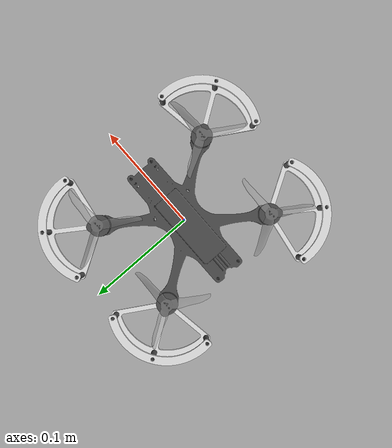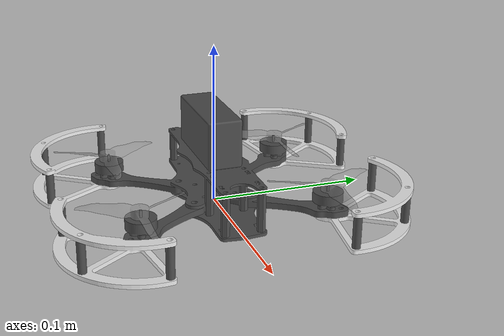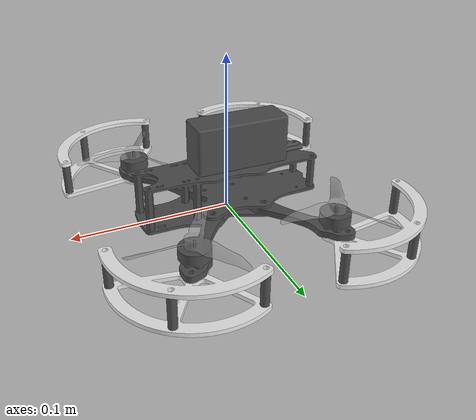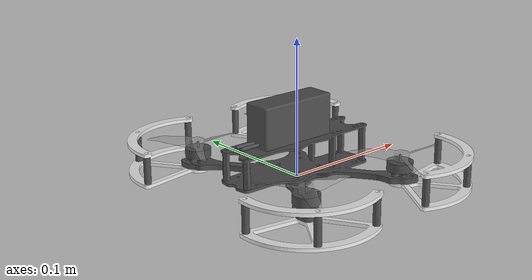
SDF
<?xml version='1.0'?>
<sdf version='1.7'>
  <model name='Base_Model'>

    <include>
      <uri>model://SAR_Base</uri>
    </include>

    <static>0</static>
    <allow_auto_disable>1</allow_auto_disable>
  </model>
</sdf>

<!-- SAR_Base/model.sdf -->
<sdf version='1.7'>
  <model name='SAR_Base'>
    <link name='SAR_Body'>
      <pose>0 0 0 0 0 0</pose>
      <inertial>
        <mass>275.0e-3</mass>
        <inertia>
          <ixx>6.17e-4</ixx>
          <ixy>0</ixy>
          <ixz>0</ixz>
          <iyy>4.64e-4</iyy>
          <iyz>0</iyz>
          <izz>1.02e-3</izz>
        </inertia>
        <pose>0 0 18.0e-3 0 0 0</pose>
      </inertial>
      <gravity>1</gravity>
      <self_collide>0</self_collide>
      <kinematic>0</kinematic>
      <enable_wind>0</enable_wind>

      <visual name='Impulse_Micro_Base_Assembly'>
        <pose>0 0 0 0 0 0</pose>
        <geometry>
          <mesh>
            <uri>model://SAR_Base/meshes/Impulse_Micro_Base_Assembly.STL</uri>
            <scale>1 1 1</scale>
          </mesh>
        </geometry>
        <material>
          <script>
            <name>Gazebo/DarkGrey</name>
            <uri>file://media/materials/scripts/gazebo.material</uri>
          </script>
          <lighting>1</lighting>
        </material>
      </visual>

      <visual name='Impulse_Micro_Prop_Guards'>
        <pose>0 0 0 0 0 0</pose>
        <geometry>
          <mesh>
            <uri>model://SAR_Base/meshes/Impulse_Micro_Prop_Guards.STL</uri>
            <scale>1 1 1</scale>
          </mesh>
        </geometry>
        <material>
          <script>
            <name>Gazebo/White</name>
            <uri>file://media/materials/scripts/gazebo.material</uri>
          </script>
          <lighting>1</lighting>
        </material>
      </visual>

      <visual name='Impulse_Micro_Prop_Guard_Standoffs'>
        <pose>0 0 0 0 0 0</pose>
        <geometry>
          <mesh>
            <uri>model://SAR_Base/meshes/Impulse_Micro_Prop_Guard_Standoffs.STL</uri>
            <scale>1 1 1</scale>
          </mesh>
        </geometry>
        <material>
          <script>
            <name>Gazebo/DarkGrey</name>
            <uri>file://media/materials/scripts/gazebo.material</uri>
          </script>
          <lighting>1</lighting>
        </material>
      </visual>

      <collision name='Body_Collision_Prop_1'>
        <pose>44.5e-3 -58.6e-3 14.75e-3 0 0 0</pose>
        <geometry>
          <cylinder>
            <length>29.5e-3</length>
            <radius>50.0e-3</radius>
          </cylinder>
        </geometry>
      </collision>

      <collision name='Body_Collision_Prop_2'>
        <pose>-44.5e-3 -58.6e-3 14.75e-3 0 0 0</pose>
        <geometry>
          <cylinder>
            <length>29.5e-3</length>
            <radius>50.0e-3</radius>
          </cylinder>
        </geometry>
      </collision>

      <collision name='Body_Collision_Prop_3'>
        <pose>-44.5e-3 58.6e-3 14.75e-3 0 0 0</pose>
        <geometry>
          <cylinder>
            <length>29.5e-3</length>
            <radius>50.0e-3</radius>
          </cylinder>
        </geometry>
      </collision>

      <collision name='Body_Collision_Prop_4'>
        <pose>44.5e-3 58.6e-3 14.75e-3 0 0 0</pose>
        <geometry>
          <cylinder>
            <length>29.5e-3</length>
            <radius>50.0e-3</radius>
          </cylinder>
        </geometry>
      </collision>

      <collision name='Body_Collision_Battery'>
        <pose>-7.0e-3 0 44.5e-3 0 0 0</pose>
        <geometry>
          <box>
            <size>60.0e-3 22.0e-3 30.0e-3 </size>
          </box>
        </geometry>
      </collision>
    </link>

    <link name='Prop_1'>
      <inertial>
        <mass>1e-6</mass>
        <inertia>
          <ixx>1e-6</ixx>
          <ixy>0</ixy>
          <ixz>0</ixz>
          <iyy>1e-6</iyy>
          <iyz>0</iyz>
          <izz>1e-6</izz>
        </inertia>
        <pose>0 0 0 0 0 0</pose>
      </inertial>
      <pose>44.5e-3 -58.6e-3 17.2e-3 0 0 0</pose>
      <gravity>1</gravity>
      <self_collide>0</self_collide>
      <visual name='Impulse_Micro_Prop_1'>
        <pose>0 0 0 0 0 0</pose>
        <geometry>
          <mesh>
            <uri>model://SAR_Base/meshes/Impulse_Micro_3-inch_Prop_CCW.STL</uri>
            <scale>1 1 1</scale>
          </mesh>
        </geometry>
        <material>
          <script>
            <uri>file://media/materials/scripts/gazebo.material</uri>
            <name>Gazebo/GreyTransparent  </name>
          </script>
        </material>
      </visual>
    </link>

    <link name='Prop_2'>
      <inertial>
        <mass>1e-6</mass>
        <inertia>
          <ixx>1e-6</ixx>
          <ixy>0</ixy>
          <ixz>0</ixz>
          <iyy>1e-6</iyy>
          <iyz>0</iyz>
          <izz>1e-6</izz>
        </inertia>
        <pose>0 0 0 0 0 0</pose>
      </inertial>
      <pose>-44.5e-3 -58.6e-3 17.2e-3 0 0 0</pose>
      <gravity>1</gravity>
      <self_collide>0</self_collide>
      <visual name='Impulse_Micro_Prop_2'>
        <pose>0 0 0 0 0 0</pose>
        <geometry>
          <mesh>
            <uri>model://SAR_Base/meshes/Impulse_Micro_3-inch_Prop_CW.STL</uri>
            <scale>1 1 1</scale>
          </mesh>
        </geometry>
        <material>
          <script>
            <uri>file://media/materials/scripts/gazebo.material</uri>
            <name>Gazebo/GreyTransparent  </name>
          </script>
        </material>
      </visual>
    </link>

    <link name='Prop_3'>
      <inertial>
        <mass>1e-6</mass>
        <inertia>
          <ixx>1e-6</ixx>
          <ixy>0</ixy>
          <ixz>0</ixz>
          <iyy>1e-6</iyy>
          <iyz>0</iyz>
          <izz>1e-6</izz>
        </inertia>
        <pose>0 0 0 0 0 0</pose>
      </inertial>
      <pose>-44.5e-3 58.6e-3 17.2e-3 0 0 0</pose>
      <gravity>1</gravity>
      <self_collide>0</self_collide>
      <visual name='Impulse_Micro_Prop_3'>
        <pose>0 0 0 0 0 0</pose>
        <geometry>
          <mesh>
            <uri>model://SAR_Base/meshes/Impulse_Micro_3-inch_Prop_CCW.STL</uri>
            <scale>1 1 1</scale>
          </mesh>
        </geometry>
        <material>
          <script>
            <uri>file://media/materials/scripts/gazebo.material</uri>
            <name>Gazebo/GreyTransparent  </name>
          </script>
        </material>
      </visual>
    </link>

    <link name='Prop_4'>
      <inertial>
        <mass>1e-6</mass>
        <inertia>
          <ixx>1e-6</ixx>
          <ixy>0</ixy>
          <ixz>0</ixz>
          <iyy>1e-6</iyy>
          <iyz>0</iyz>
          <izz>1e-6</izz>
        </inertia>
        <pose>0 0 0 0 0 0</pose>
      </inertial>
      <pose>44.5e-3 58.6e-3 17.2e-3 0 0 0</pose>
      <gravity>1</gravity>
      <self_collide>0</self_collide>
      <visual name='Impulse_Micro_Prop_4'>
        <pose>0 0 0 0 0 0</pose>
        <geometry>
          <mesh>
            <uri>model://SAR_Base/meshes/Impulse_Micro_3-inch_Prop_CW.STL</uri>
            <scale>1 1 1</scale>
          </mesh>
        </geometry>
        <material>
          <script>
            <uri>file://media/materials/scripts/gazebo.material</uri>
            <name>Gazebo/GreyTransparent  </name>
          </script>
        </material>
      </visual>
    </link>

    <link name='Camera'>
      <inertial>
        <mass>1e-6</mass>
        <inertia>
          <ixx>1e-6</ixx>
          <ixy>0</ixy>
          <ixz>0</ixz>
          <iyy>1e-6</iyy>
          <iyz>0</iyz>
          <izz>1e-6</izz>
        </inertia>
        <pose>0 0 0 0 0 0</pose>
      </inertial>

      <sensor type="camera" name="Camera">
        <pose>0 0 0 0 0 0</pose>
        <update_rate>100</update_rate>        <!--Changed to a nice number for FPS because message didn't contain enough precision -->
        <visualize>false</visualize>
        <camera name="head">
          <save enabled="false">
            <path>/home/bhabas/Downloads/Video_images</path>
            <!--Convert Command: ffmpeg -framerate 60 -pattern_type glob -i '*.jpg' -c:v libx264 -pix_fmt yuv420p out.mp4 -->
          </save>
          <horizontal_fov>1.435</horizontal_fov>          <!-- 82.22 deg FoV to match AI Deck -->
          <image>
            <width>64</width>
            <height>64</height>
            <format>L8</format>
          </image>
          <clip>
            <near>0.02</near>
            <far>300</far>
          </clip>
          <noise>
            <type>gaussian</type>
            <!-- Noise is sampled independently per pixel on each frame.
                 That pixel's noise value is added to each of its color
                 channels, which at that point lie in the range [0,1]. -->
            <mean>0.0</mean>
            <stddev>0.000</stddev>
          </noise>
          <lens>
            <type>sterographic</type>
          </lens>
        </camera>
        <plugin name="camera_controller" filename="libgazebo_ros_camera.so">
          <alwaysOn>true</alwaysOn>
          <updateRate>0.0</updateRate>
          <cameraName>SAR_Internal/camera</cameraName>
          <imageTopicName>image_raw</imageTopicName>
          <cameraInfoTopicName>camera_info</cameraInfoTopicName>
          <frameName>camera_sensor</frameName>
          <hackBaseline>0.0</hackBaseline>
          <distortionK1>0.0</distortionK1>
          <distortionK2>0.0</distortionK2>
          <distortionK3>0.0</distortionK3>
          <distortionT1>0.0</distortionT1>
          <distortionT2>0.0</distortionT2>
        </plugin>
      </sensor>

      <visual name='camera_center'>
        <cast_shadows>0</cast_shadows>
        <pose>0 0 0 0 0 0</pose>
        <geometry>
          <sphere>
            <radius>0.002</radius>
          </sphere>
        </geometry>
        <material>
          <script>
            <name>Gazebo/Blue</name>
            <uri>file://media/materials/scripts/gazebo.material</uri>
          </script>
          <shader type='pixel'>
            <normal_map>__default__</normal_map>
          </shader>
        </material>
      </visual>
    </link>

    <joint name='Prop_1_Joint' type='revolute'>
      <parent>SAR_Body</parent>
      <child>Prop_1</child>
      <pose>0 0 0 0 0 0</pose>
      <axis>
        <xyz>0 0 1</xyz>
        <limit>
          <lower>-1.79769e+308</lower>
          <upper>1.79769e+308</upper>
          <effort>-1</effort>
          <velocity>-1</velocity>
        </limit>
        <dynamics>
          <spring_reference>0</spring_reference>
          <spring_stiffness>0</spring_stiffness>
        </dynamics>
      </axis>
    </joint>

    <joint name='Prop_2_Joint' type='revolute'>
      <parent>SAR_Body</parent>
      <child>Prop_2</child>
      <pose>0 0 0 0 0 0</pose>
      <axis>
        <xyz>0 0 1</xyz>
        <limit>
          <lower>-1.79769e+308</lower>
          <upper>1.79769e+308</upper>
          <effort>-1</effort>
          <velocity>-1</velocity>
        </limit>
        <dynamics>
          <spring_reference>0</spring_reference>
          <spring_stiffness>0</spring_stiffness>
        </dynamics>
      </axis>
    </joint>

    <joint name='Prop_3_Joint' type='revolute'>
      <parent>SAR_Body</parent>
      <child>Prop_3</child>
      <pose>0 0 0 0 0 0</pose>
      <axis>
        <xyz>0 0 1</xyz>
        <limit>
          <lower>-1.79769e+308</lower>
          <upper>1.79769e+308</upper>
          <effort>-1</effort>
          <velocity>-1</velocity>
        </limit>
        <dynamics>
          <spring_reference>0</spring_reference>
          <spring_stiffness>0</spring_stiffness>
        </dynamics>
      </axis>
    </joint>

    <joint name='Prop_4_Joint' type='revolute'>
      <parent>SAR_Body</parent>
      <child>Prop_4</child>
      <pose>0 0 0 0 0 0</pose>
      <axis>
        <xyz>0 0 1</xyz>
        <limit>
          <lower>-1.79769e+308</lower>
          <upper>1.79769e+308</upper>
          <effort>-1</effort>
          <velocity>-1</velocity>
        </limit>
        <dynamics>
          <spring_reference>0</spring_reference>
          <spring_stiffness>0</spring_stiffness>
        </dynamics>
      </axis>
    </joint>

    <joint name='Camera_Joint' type='fixed'>
      <parent>SAR_Body</parent>
      <child>Camera</child>
    </joint>

    <plugin name='Motor_1_Plugin' filename='libMotor_Plugin.so'>
      <Motor_Number>1</Motor_Number>
      <Joint_Name>Prop_1_Joint</Joint_Name>
      <Link_Name>Prop_1</Link_Name>
      <Turning_Direction>ccw</Turning_Direction>
      <Visual_Slowdown>200</Visual_Slowdown>
    </plugin>

    <plugin name='Motor_2_Plugin' filename='libMotor_Plugin.so'>
      <Motor_Number>2</Motor_Number>
      <Joint_Name>Prop_2_Joint</Joint_Name>
      <Link_Name>Prop_2</Link_Name>
      <Turning_Direction>cw</Turning_Direction>
      <Visual_Slowdown>200</Visual_Slowdown>
    </plugin>

    <plugin name='Motor_3_Plugin' filename='libMotor_Plugin.so'>
      <Motor_Number>3</Motor_Number>
      <Joint_Name>Prop_3_Joint</Joint_Name>
      <Link_Name>Prop_3</Link_Name>
      <Turning_Direction>ccw</Turning_Direction>
      <Visual_Slowdown>200</Visual_Slowdown>
    </plugin>

    <plugin name='Motor_4_Plugin' filename='libMotor_Plugin.so'>
      <Motor_Number>4</Motor_Number>
      <Joint_Name>Prop_4_Joint</Joint_Name>
      <Link_Name>Prop_4</Link_Name>
      <Turning_Direction>cw</Turning_Direction>
      <Visual_Slowdown>200</Visual_Slowdown>
    </plugin>

    <plugin name='SAR_Update_Plugin' filename='libSAR_Update_Plugin.so'>
      <CameraJointName>Camera_Joint</CameraJointName>
    </plugin>

    <plugin name='Vicon_plugin' filename='libgazebo_ros_p3d.so'>
      <alwaysOn>true</alwaysOn>
      <updateRate>1000</updateRate>
      <bodyName>SAR_Body</bodyName>
      <topicName>SAR_External/ExtPosition</topicName>
      <frameName>world</frameName>
      <xyzOffsets>0 0 0</xyzOffsets>
      <rpyOffsets>0 0 0</rpyOffsets>
      <robotNamespace>/</robotNamespace>
    </plugin>

    <plugin name="IMU_plugin" filename="libgazebo_ros_imu.so">
      <alwaysOn>true</alwaysOn>
      <updateRate>1000</updateRate>
      <bodyName>SAR_Body</bodyName>
      <topicName>SAR_Internal/IMU</topicName>
      <serviceName>imu_service</serviceName>
      <frameName>SAR_Body</frameName>
    </plugin>

    <static>0</static>
    <allow_auto_disable>1</allow_auto_disable>
  </model>
</sdf>
